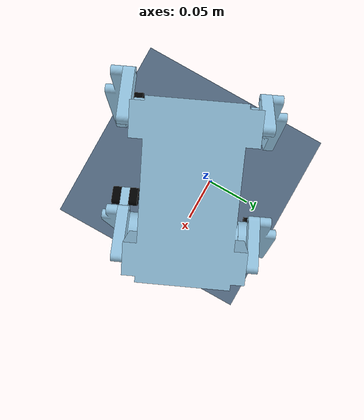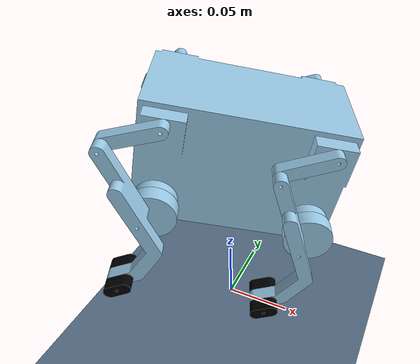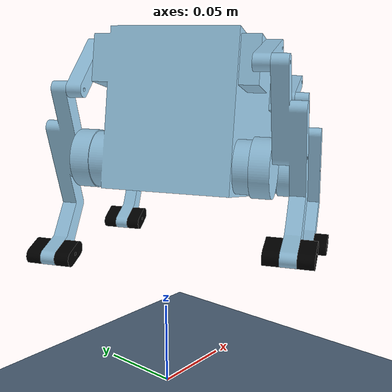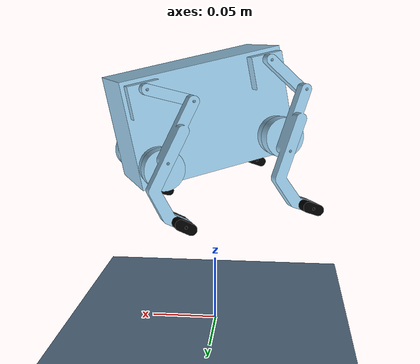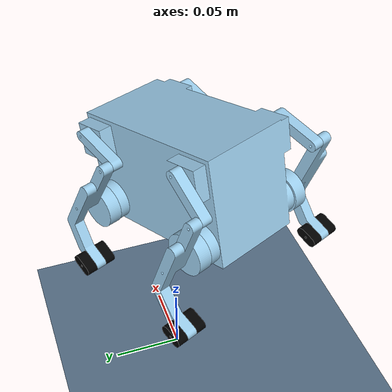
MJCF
<?xml version="1.0" ?>
<!-- Scene wrapper: includes robot.xml and adds floor + lighting -->
<mujoco model="lego_quadruped_scene">
  <include file="robot.xml"/>

  <statistic center="0 0 0.06" extent="0.4"/>

  <visual>
    <headlight diffuse="0.7 0.7 0.7" ambient="0.4 0.4 0.4"/>
    <global azimuth="140" elevation="-20"/>
  </visual>

  <worldbody>
    <light pos="0 0 1.2" dir="0 0 -1" diffuse="0.8 0.8 0.8"/>
    <geom name="floor" type="plane" size="0 0 0.1" friction="1.2 0.02 0.001" rgba="0.35 0.45 0.55 1"/>
  </worldbody>
</mujoco>

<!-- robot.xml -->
<!-- Generated using onshape-to-robot -->
<!-- Onshape https://cad.onshape.com/documents/bedc912299496833a616c9c7/w/1b4a383ad4d6ae9d7642190e/e/2f6a685107d0e7d5872fe03c -->
<mujoco model="C:\Users\gooey\OneDrive\Documents\GitHub\LEGO-quadruped\lego_quadruped">
  <compiler angle="radian" meshdir="assets" autolimits="true"/>
  <option timestep="0.002" iterations="100" solver="Newton"/>
  <default>
    <default class="C:\Users\gooey\OneDrive\Documents\GitHub\LEGO-quadruped\lego_quadruped">
      <joint frictionloss="0.1" armature="0.005"/>
        <default class="visual">
        <geom type="mesh" contype="0" conaffinity="0" group="2"/>
      </default>
      <default class="collision">
        <geom group="3"/>
      </default>
    </default>
  </default>
  <worldbody>
    <!-- Link body -->
    <body name="body" pos="0 0 0.12" quat="0.9791 -0.1949 0.0586 0.0000" childclass="C:\Users\gooey\OneDrive\Documents\GitHub\LEGO-quadruped\lego_quadruped">
      <freejoint name="root"/>
      <inertial pos="0.0106918 -0.0314052 0.0349948" mass="0.22" fullinertia="0.000249244 0.00037393 0.00038866 -7.80181e-05 -1.588e-05 1.94939e-06"/>
      <!-- Part body -->
      <geom type="mesh" class="visual" pos="0.0720267 -0.0166011 0.0408558" quat="0.223594 0.00128669 0.163546 -0.960863" mesh="body" material="body_material"/>
      <geom type="mesh" class="collision" pos="0.0720267 -0.0166011 0.0408558" quat="0.223594 0.00128669 0.163546 -0.960863" mesh="body" material="body_material"/>
      <!-- Link gear -->
      <body name="gear" pos="-0.0507704 -0.00945235 0.0203524" quat="0.123424 0.51112 -0.628978 0.572634">
        <!-- Joint from body to gear TODO: Point this joint to Part gear_6 -->
        <joint axis="0 0 1" name="frontRightGear" type="hinge"/>
        <inertial pos="3.57143e-05 0 -0.005" mass="0.002" fullinertia="1.29667e-07 1.29093e-07 2.25426e-07 -0 -0 -0"/>
        <!-- Part gear -->
        <geom type="mesh" class="visual" pos="0.0405968 -0.0451753 -0.01" quat="0.5 -0.5 -0.5 -0.5" mesh="gear" material="gear_material"/>
        <geom type="mesh" class="collision" pos="0.0405968 -0.0451753 -0.01" quat="0.5 -0.5 -0.5 -0.5" mesh="gear" material="gear_material"/>
      </body>
      <!-- Link gear_2 -->
      <body name="gear_2" pos="0.0338304 0.0308986 0.0274595" quat="0.50445 0.435604 0.683452 -0.29778">
        <!-- Joint from body to gear_2 TODO: Point this joint to Part gear_5 -->
        <joint axis="0 0 1" name="backRightGear" type="hinge"/>
        <inertial pos="3.57143e-05 -0 -0.005" mass="0.002" fullinertia="1.29667e-07 1.29093e-07 2.25426e-07 -0 -0 0"/>
        <!-- Part gear_2 -->
        <geom type="mesh" class="visual" pos="0.0405968 0.0451753 0" quat="0.5 0.5 0.5 -0.5" mesh="gear" material="gear_material"/>
        <geom type="mesh" class="collision" pos="0.0405968 0.0451753 0" quat="0.5 0.5 0.5 -0.5" mesh="gear" material="gear_material"/>
      </body>
      <!-- Link gear_3 -->
      <body name="gear_3" pos="-0.0159318 -0.0780202 -0.0050585" quat="0.666003 -0.580358 0.0795487 0.461841">
        <!-- Joint from body to gear_3 TODO: Point this joint to Part gear_4 -->
        <joint axis="0 0 1" name="frontLeftGear" type="hinge"/>
        <inertial pos="3.57143e-05 -0 -0.005" mass="0.002" fullinertia="1.29667e-07 1.29093e-07 2.25426e-07 0 0 0"/>
        <!-- Part gear_3 -->
        <geom type="mesh" class="visual" pos="0.0405968 0.0451753 0" quat="0.5 0.5 0.5 -0.5" mesh="gear" material="gear_material"/>
        <geom type="mesh" class="collision" pos="0.0405968 0.0451753 0" quat="0.5 0.5 0.5 -0.5" mesh="gear" material="gear_material"/>
      </body>
      <!-- Link thigh -->
      <body name="thigh" pos="-0.0109731 -0.0979755 0.0492112" quat="0.5793 -0.558854 0.175571 0.566805">
        <!-- Joint from body to thigh -->
        <joint axis="0 0 1" name="frontLeftThigh" type="hinge"/>
        <inertial pos="0 0.016 -0.004" mass="0.0002" fullinertia="2.5091e-08 2.11e-09 2.5068e-08 0 0 -0"/>
        <!-- Part thigh -->
        <geom type="mesh" class="visual" pos="-0.004 -0.00656639 0.0267861" quat="0 1 0 0" mesh="thigh" material="thigh_material"/>
        <geom type="mesh" class="collision" pos="-0.004 -0.00656639 0.0267861" quat="0 1 0 0" mesh="thigh" material="thigh_material"/>
        <!-- Link lleg -->
        <body name="lleg" pos="-0 0.032 -0.008" quat="0.658658 -0 -0 -0.752443">
          <!-- Joint from thigh to lleg -->
          <joint axis="0 0 1" name="frontLeftKnee" type="hinge"/>
          <inertial pos="-0.013013 0.0571696 -0.0100646" mass="0.009" fullinertia="6.52513e-06 2.15708e-06 7.99094e-06 2.66554e-06 -2.2731e-07 5.95187e-07"/>
          <!-- Part lleg -->
          <geom type="mesh" class="visual" pos="0.00737192 0.0761897 -0.008" quat="0.5 0.5 0.5 -0.5" mesh="lleg" material="lleg_material"/>
          <geom type="mesh" class="collision" pos="0.00737192 0.0761897 -0.008" quat="0.5 0.5 0.5 -0.5" mesh="lleg" material="lleg_material"/>
          <!-- Part llfoot -->
          <geom type="mesh" class="visual" pos="0.00737192 0.0761897 -0.008" quat="0.5 0.5 0.5 -0.5" mesh="llfoot" material="llfoot_material"/>
          <geom type="mesh" class="collision" pos="0.00737192 0.0761897 -0.008" quat="0.5 0.5 0.5 -0.5" mesh="llfoot" material="llfoot_material"/>
          <!-- Part lrfoot -->
          <geom type="mesh" class="visual" pos="-0.0655589 0.0841897 -0.008" quat="0.5 -0.5 0.5 0.5" mesh="lrfoot" material="lrfoot_material"/>
          <geom type="mesh" class="collision" pos="-0.0655589 0.0841897 -0.008" quat="0.5 -0.5 0.5 0.5" mesh="lrfoot" material="lrfoot_material"/>
          <!-- Link gear_4 -->
          <body name="gear_4" pos="3.65419e-05 0.046 0" quat="0 1 0 0">
            <!-- Joint from lleg to gear_4 -->
            <joint axis="0 0 1" name="frontLeftCalf" type="hinge"/>
            <inertial pos="0.00162501 -0.00786969 -0.005" mass="0.002" fullinertia="1.29116e-07 1.29643e-07 2.25426e-07 -1.14e-10 0 -0"/>
            <!-- Part gear_4 -->
          </body>
        </body>
      </body>
      <!-- Link thigh_2 -->
      <body name="thigh_2" pos="0.0370686 0.0143294 0.0829841" quat="0.563143 0.593545 0.551871 -0.161284">
        <!-- Joint from body to thigh_2 -->
        <joint axis="0 0 1" name="backRightThigh" type="hinge"/>
        <inertial pos="-0 -0.016 -0.004" mass="0.0002" fullinertia="2.5091e-08 2.11e-09 2.5068e-08 -0 0 -0"/>
        <!-- Part thigh_2 -->
        <geom type="mesh" class="visual" pos="-0.004 -0.0385664 0.0267861" quat="0 1 0 0" mesh="thigh" material="thigh_material"/>
        <geom type="mesh" class="collision" pos="-0.004 -0.0385664 0.0267861" quat="0 1 0 0" mesh="thigh" material="thigh_material"/>
        <!-- Link rleg -->
        <body name="rleg" pos="0 -0.032 -0.008" quat="0.625983 -0 -0 0.779836">
          <!-- Joint from thigh_2 to rleg -->
          <joint axis="0 0 1" name="backRightKnee" type="hinge"/>
          <inertial pos="-0.013013 -0.0571696 -0.0100646" mass="0.009" fullinertia="6.52513e-06 2.15708e-06 7.99094e-06 -2.66554e-06 -2.2731e-07 -5.95187e-07"/>
          <!-- Part rrfoot -->
          <geom type="mesh" class="visual" pos="0.00737192 -0.0761897 -0.008" quat="0.5 -0.5 -0.5 -0.5" mesh="rrfoot" material="rrfoot_material"/>
          <geom type="mesh" class="collision" pos="0.00737192 -0.0761897 -0.008" quat="0.5 -0.5 -0.5 -0.5" mesh="rrfoot" material="rrfoot_material"/>
          <!-- Part rlfoot -->
          <geom type="mesh" class="visual" pos="0.00737192 -0.0841897 -0" quat="0.5 0.5 0.5 -0.5" mesh="rlfoot" material="rlfoot_material"/>
          <geom type="mesh" class="collision" pos="0.00737192 -0.0841897 -0" quat="0.5 0.5 0.5 -0.5" mesh="rlfoot" material="rlfoot_material"/>
          <!-- Part rleg -->
          <geom type="mesh" class="visual" pos="0.00737192 -0.0761897 -0.008" quat="0.5 -0.5 -0.5 -0.5" mesh="rleg" material="rleg_material"/>
          <geom type="mesh" class="collision" pos="0.00737192 -0.0761897 -0.008" quat="0.5 -0.5 -0.5 -0.5" mesh="rleg" material="rleg_material"/>
          <!-- Link gear_5 -->
          <body name="gear_5" pos="3.65419e-05 -0.046 0" quat="0 1 0 0">
            <!-- Joint from rleg to gear_5 -->
            <joint axis="0 0 1" name="backRightCalf" type="hinge"/>
            <inertial pos="-0.0053388 0.00600582 -0.005" mass="0.002" fullinertia="1.29346e-07 1.29413e-07 2.25426e-07 -2.85e-10 -0 -0"/>
            <!-- Part gear_5 -->
          </body>
        </body>
      </body>
      <!-- Link thigh_3 -->
      <body name="thigh_3" pos="-0.0475322 -0.0260215 0.0758769" quat="0.58497 0.702195 0.404696 -0.0308765">
        <!-- Joint from body to thigh_3 -->
        <joint axis="0 0 1" name="frontRightThigh" type="hinge"/>
        <inertial pos="-0 -0.016 -0.004" mass="0.0002" fullinertia="2.5091e-08 2.11e-09 2.5068e-08 -0 -0 0"/>
        <!-- Part thigh_3 -->
        <geom type="mesh" class="visual" pos="-0.004 -0.0385664 0.0267861" quat="0 1 0 0" mesh="thigh" material="thigh_material"/>
        <geom type="mesh" class="collision" pos="-0.004 -0.0385664 0.0267861" quat="0 1 0 0" mesh="thigh" material="thigh_material"/>
        <!-- Link rleg_2 -->
        <body name="rleg_2" pos="-0 -0.032 -0.008" quat="0.824429 -0 0 0.565966">
          <!-- Joint from thigh_3 to rleg_2 -->
          <joint axis="0 0 1" name="frontRightKnee" type="hinge"/>
          <inertial pos="-0.013013 -0.0571696 -0.0100646" mass="0.009" fullinertia="6.52513e-06 2.15708e-06 7.99094e-06 -2.66554e-06 -2.2731e-07 -5.95187e-07"/>
          <!-- Part rlfoot_2 -->
          <geom type="mesh" class="visual" pos="0.00737192 -0.0761897 -0.008" quat="0.5 -0.5 -0.5 -0.5" mesh="rlfoot" material="rlfoot_material"/>
          <geom type="mesh" class="collision" pos="0.00737192 -0.0761897 -0.008" quat="0.5 -0.5 -0.5 -0.5" mesh="rlfoot" material="rlfoot_material"/>
          <!-- Part rleg_2 -->
          <geom type="mesh" class="visual" pos="0.00737192 -0.0761897 -0.008" quat="0.5 -0.5 -0.5 -0.5" mesh="rleg" material="rleg_material"/>
          <geom type="mesh" class="collision" pos="0.00737192 -0.0761897 -0.008" quat="0.5 -0.5 -0.5 -0.5" mesh="rleg" material="rleg_material"/>
          <!-- Part rrfoot_2 -->
          <geom type="mesh" class="visual" pos="0.00737192 -0.0761897 -0.008" quat="0.5 -0.5 -0.5 -0.5" mesh="rrfoot" material="rrfoot_material"/>
          <geom type="mesh" class="collision" pos="0.00737192 -0.0761897 -0.008" quat="0.5 -0.5 -0.5 -0.5" mesh="rrfoot" material="rrfoot_material"/>
          <!-- Link gear_6 -->
          <body name="gear_6" pos="3.65419e-05 -0.046 0" quat="0 1 0 0">
            <!-- Joint from rleg_2 to gear_6 -->
            <joint axis="0 0 1" name="frontRightCalf" type="hinge"/>
            <inertial pos="-0.000389385 -0.00802627 -0.005" mass="0.002" fullinertia="1.29094e-07 1.29665e-07 2.25426e-07 2.8e-11 0 0"/>
            <!-- Part gear_6 -->
          </body>
        </body>
      </body>
      <!-- Link gear_7 -->
      <body name="gear_7" pos="0.068669 -0.0376693 0.00204868" quat="0.770263 -0.578869 -0.0897387 0.252097">
        <!-- Joint from body to gear_7 TODO: Point this joint to Part gear_8 -->
        <joint axis="0 0 1" name="backLeftGear" type="hinge"/>
        <inertial pos="3.57143e-05 0 -0.005" mass="0.002" fullinertia="1.29667e-07 1.29093e-07 2.25426e-07 0 0 -0"/>
        <!-- Part gear_7 -->
        <geom type="mesh" class="visual" pos="0.0405968 0.0451753 0" quat="0.5 0.5 0.5 -0.5" mesh="gear" material="gear_material"/>
        <geom type="mesh" class="collision" pos="0.0405968 0.0451753 0" quat="0.5 0.5 0.5 -0.5" mesh="gear" material="gear_material"/>
      </body>
      <!-- Link thigh_4 -->
      <body name="thigh_4" pos="0.0736277 -0.0576245 0.0563184" quat="0.599581 -0.564884 0.155078 0.545307">
        <!-- Joint from body to thigh_4 -->
        <joint axis="0 0 1" name="backLeftThigh" type="hinge"/>
        <inertial pos="0 0.016 -0.004" mass="0.0002" fullinertia="2.5091e-08 2.11e-09 2.5068e-08 0 0 -0"/>
        <!-- Part thigh_4 -->
        <geom type="mesh" class="visual" pos="-0.004 -0.00656639 0.0267861" quat="0 1 0 0" mesh="thigh" material="thigh_material"/>
        <geom type="mesh" class="collision" pos="-0.004 -0.00656639 0.0267861" quat="0 1 0 0" mesh="thigh" material="thigh_material"/>
        <!-- Link lleg_2 -->
        <body name="lleg_2" pos="0 0.032 -0.008" quat="0.715197 -0 -0 -0.698922">
          <!-- Joint from thigh_4 to lleg_2 -->
          <joint axis="0 0 1" name="backLeftKnee" type="hinge"/>
          <inertial pos="-0.013013 0.0571696 -0.0100646" mass="0.009" fullinertia="6.52513e-06 2.15708e-06 7.99094e-06 2.66554e-06 -2.2731e-07 5.95187e-07"/>
          <!-- Part llfoot_2 -->
          <geom type="mesh" class="visual" pos="0.00737192 0.0761897 -0.008" quat="0.5 0.5 0.5 -0.5" mesh="llfoot" material="llfoot_material"/>
          <geom type="mesh" class="collision" pos="0.00737192 0.0761897 -0.008" quat="0.5 0.5 0.5 -0.5" mesh="llfoot" material="llfoot_material"/>
          <!-- Part lleg_2 -->
          <geom type="mesh" class="visual" pos="0.00737192 0.0761897 -0.008" quat="0.5 0.5 0.5 -0.5" mesh="lleg" material="lleg_material"/>
          <geom type="mesh" class="collision" pos="0.00737192 0.0761897 -0.008" quat="0.5 0.5 0.5 -0.5" mesh="lleg" material="lleg_material"/>
          <!-- Part lrfoot_2 -->
          <geom type="mesh" class="visual" pos="-0.0655589 0.0841897 -0.008" quat="0.5 -0.5 0.5 0.5" mesh="lrfoot" material="lrfoot_material"/>
          <geom type="mesh" class="collision" pos="-0.0655589 0.0841897 -0.008" quat="0.5 -0.5 0.5 0.5" mesh="lrfoot" material="lrfoot_material"/>
          <!-- Link gear_8 -->
          <body name="gear_8" pos="3.65419e-05 0.046 -0" quat="0 1 0 0">
            <!-- Joint from lleg_2 to gear_8 -->
            <joint axis="0 0 1" name="backLeftCalf" type="hinge"/>
            <inertial pos="0.00612363 -0.00520326 -0.005" mass="0.002" fullinertia="1.29426e-07 1.29333e-07 2.25426e-07 -2.83e-10 0 0"/>
            <!-- Part gear_8 -->
          </body>
        </body>
      </body>
    </body>
  </worldbody>
  <asset>
    <mesh file="thigh.stl"/>
    <mesh file="rleg.stl"/>
    <mesh file="rlfoot.stl"/>
    <mesh file="lrfoot.stl"/>
    <mesh file="gear.stl"/>
    <mesh file="rrfoot.stl"/>
    <mesh file="lleg.stl"/>
    <mesh file="llfoot.stl"/>
    <mesh file="body.stl"/>
    <material name="body_material" rgba="0.615686 0.811765 0.929412 1"/>
    <material name="gear_material" rgba="0.615686 0.811765 0.929412 1"/>
    <material name="thigh_material" rgba="0.615686 0.811765 0.929412 1"/>
    <material name="lleg_material" rgba="0.615686 0.811765 0.929412 1"/>
    <material name="llfoot_material" rgba="0 0 0 1"/>
    <material name="lrfoot_material" rgba="0 0 0 1"/>
    <material name="rrfoot_material" rgba="0 0 0 1"/>
    <material name="rlfoot_material" rgba="0 0 0 1"/>
    <material name="rleg_material" rgba="0.615686 0.811765 0.929412 1"/>
  </asset>
  <actuator>
    <position class="C:\Users\gooey\OneDrive\Documents\GitHub\LEGO-quadruped\lego_quadruped" name="frontRightGear" joint="frontRightGear"/>
    <position class="C:\Users\gooey\OneDrive\Documents\GitHub\LEGO-quadruped\lego_quadruped" name="backRightGear" joint="backRightGear"/>
    <position class="C:\Users\gooey\OneDrive\Documents\GitHub\LEGO-quadruped\lego_quadruped" name="frontLeftGear" joint="frontLeftGear"/>
    <position class="C:\Users\gooey\OneDrive\Documents\GitHub\LEGO-quadruped\lego_quadruped" name="backLeftGear" joint="backLeftGear"/>
  </actuator>
  <equality>
    <weld body1="gear" body2="gear_6"/>
    <weld body1="gear_2" body2="gear_5"/>
    <weld body1="gear_3" body2="gear_4"/>
    <weld body1="gear_7" body2="gear_8"/>
  </equality>
</mujoco>
